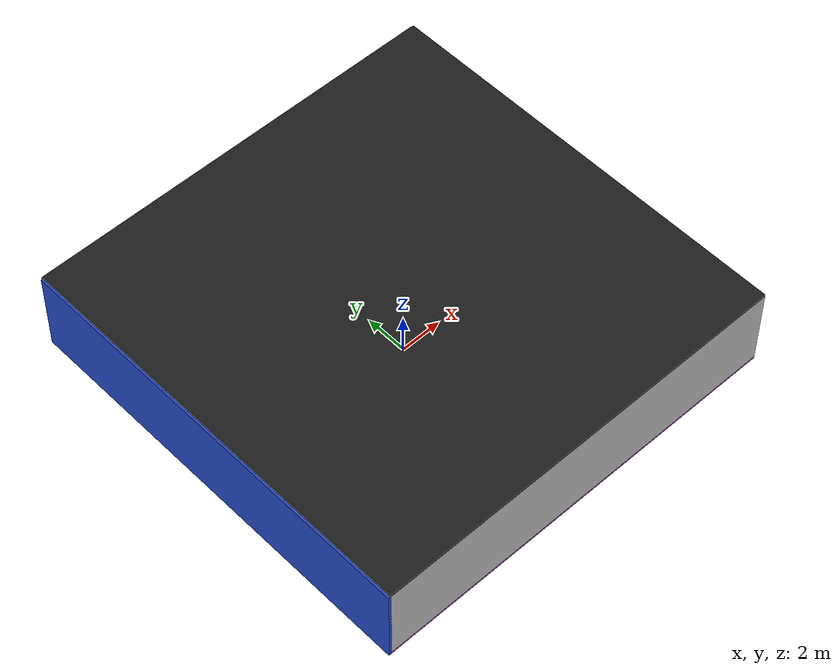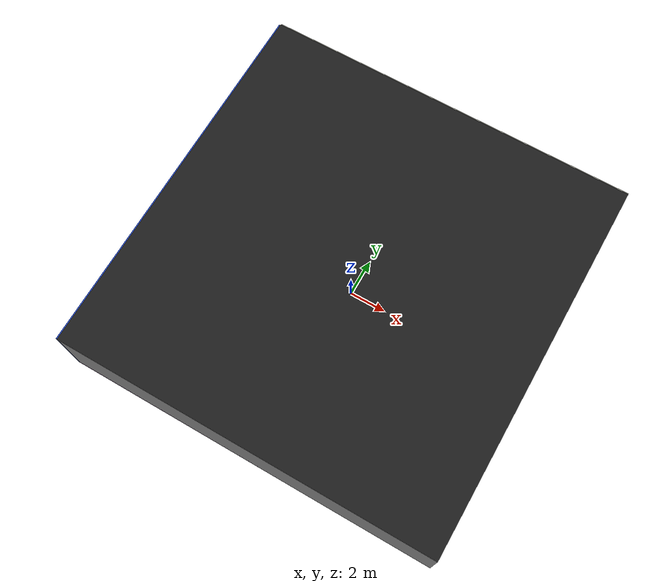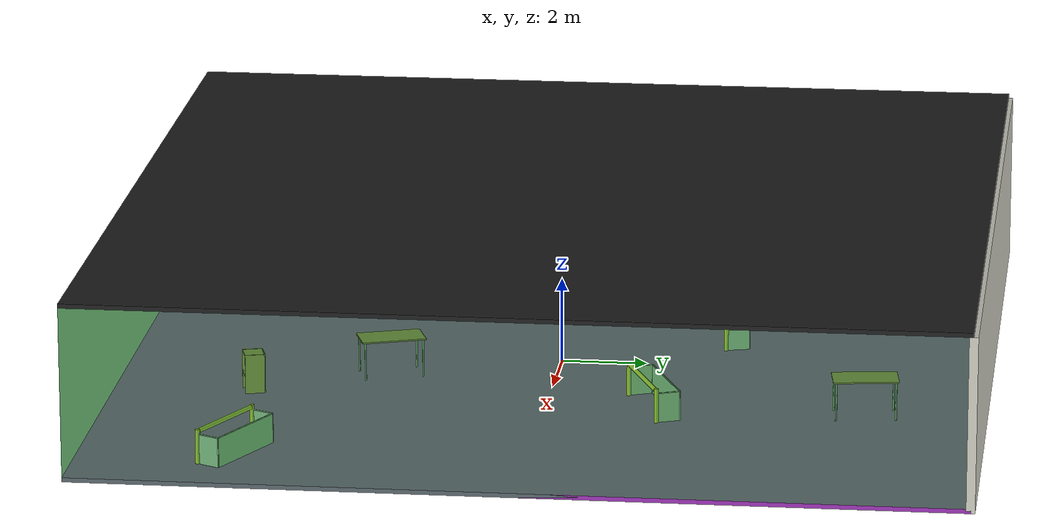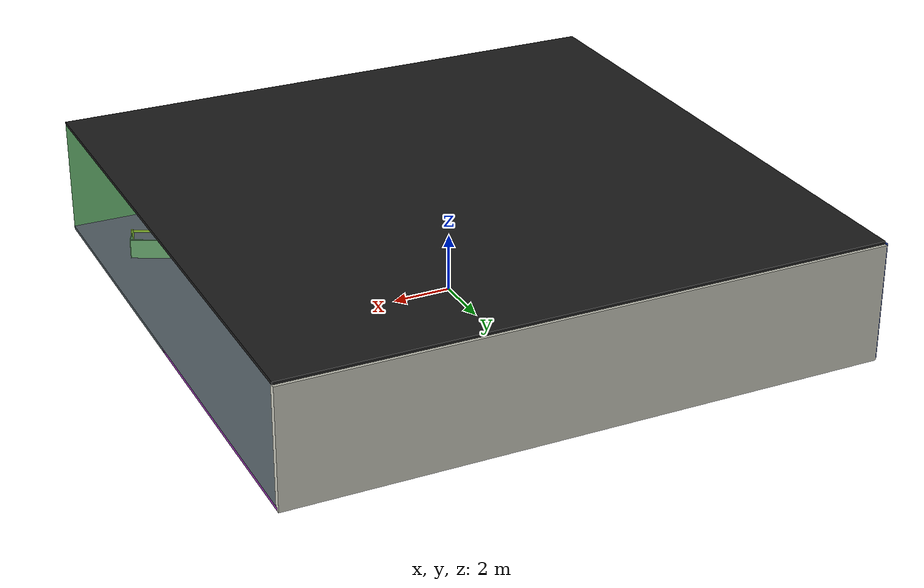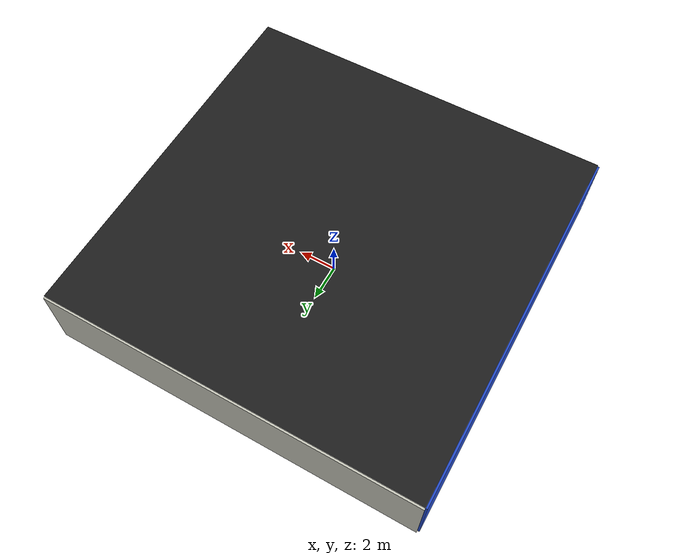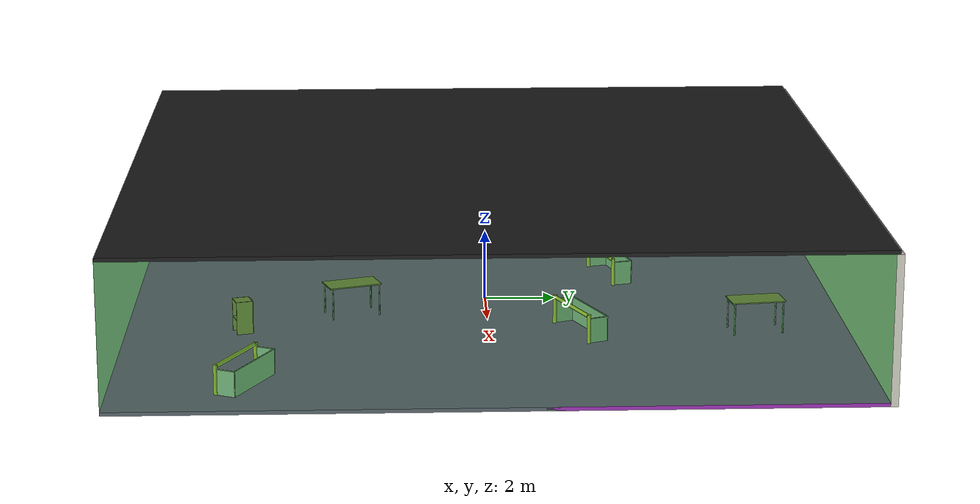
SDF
<sdf version="1.4">
 <world name="default">
  <physics type="ode">
   <max_step_size>0.001</max_step_size>
   <real_time_factor>1</real_time_factor>
   <real_time_update_rate>1000</real_time_update_rate>
   <gravity>0 0 -9.8</gravity>
  </physics>
  <scene><ambient>0.4 0.4 0.4 1</ambient><background>0.7 0.7 0.7 1</background><shadows>1</shadows></scene>
  <model name="Surrounding">
   <static>1</static>
   <link name="Ceiling">
    <collision name="Ceiling_Collision"><geometry><box><size>20 20 0.1</size></box></geometry></collision>
    <visual name="Ceiling_Visual">
     <geometry><box><size>20 20 0.1</size></box></geometry>
     <material>
      <script><uri>file://media/materials/scripts/gazebo.material</uri><name>Gazebo/Black</name></script>
     </material>
    </visual>
    <pose>0 0 4.05 0 0 0</pose>
   </link>
   <link name="Wall_South">
    <collision name="Wall_South_Collision">
     <geometry><box><size>20 0 4</size></box></geometry>
     <pose>0 0 2 0 -0 0</pose>
    </collision>
    <visual name="Wall_South_Visual">
     <pose>0 0 2 0 -0 0</pose>
     <geometry><box><size>20 0 4</size></box></geometry>
     <material>
      <script><uri>file://media/materials/scripts/gazebo.material</uri><name>Gazebo/PioneerBody</name></script>
     </material>
    </visual>
    <velocity_decay><linear>0</linear><angular>0</angular></velocity_decay>
    <pose>0 -10 0 0 -0 0</pose>
   </link>
   <link name="Wall_East">
    <collision name="Wall_21_Collision">
     <geometry><box><size>20 0 4</size></box></geometry>
     <pose>0 0 2 0 -0 0</pose>
    </collision>
    <visual name="Wall_21_Visual">
     <pose>0 0 2 0 -0 0</pose>
     <geometry><box><size>20 0 4</size></box></geometry>
     <material>
      <script><uri>file://media/materials/scripts/gazebo.material</uri><name>Gazebo/GreenTransparent</name></script>
     </material>
    </visual>
    <velocity_decay><linear>0</linear><angular>0</angular></velocity_decay>
    <pose>10 0 0 0 -0 1.5708</pose>
   </link>
   <link name="Wall_North">
    <collision name="Wall_22_Collision">
     <geometry><box><size>20 0.2 4</size></box></geometry>
     <pose>0 0 2 0 -0 0</pose>
    </collision>
    <visual name="Wall_22_Visual">
     <pose>0 0 2 0 -0 0</pose>
     <geometry><box><size>20 0.2 4</size></box></geometry>
     <material>
      <script><uri>file://media/materials/scripts/gazebo.material</uri><name>Gazebo/PaintedWall</name></script>
     </material>
    </visual>
    <velocity_decay><linear>0</linear><angular>0</angular></velocity_decay>
    <pose>0 10 0 0 -0 0</pose>
   </link>
   <link name="Wall_West">
    <collision name="Wall_23_Collision">
     <geometry><box><size>20 0.2 4</size></box></geometry>
     <pose>0 0 2 0 -0 0</pose>
    </collision>
    <visual name="Wall_23_Visual">
     <pose>0 0 2 0 -0 0</pose>
     <geometry><box><size>20 0.2 4</size></box></geometry>
     <material>
      <script><uri>file://media/materials/scripts/gazebo.material</uri><name>Gazebo/Blue</name></script>
     </material>
    </visual>
    <velocity_decay><linear>0</linear><angular>0</angular></velocity_decay>
    <pose>-10 0 0 0 0 -1.5708</pose>
   </link>
   <link name="Ground_link">
    <collision name="collision">
     <pose>0 0 .05 0 -0 0</pose>
     <geometry><box><size>20 20 0.1</size></box></geometry>
    </collision>
    <visual name="visual">
     <pose>0 0 .05 0 -0 0</pose>
     <geometry><box><size>20 20 0.1</size></box></geometry>
     <material>
      <script><uri>file://media/materials/scripts/gazebo.material</uri><name>Gazebo/PurpleGlow</name></script>
     </material>
    </visual>
   </link>
   <static>1</static>
  </model>
  <spherical_coordinates>
   <surface_model>EARTH_WGS84</surface_model>
   <latitude_deg>0</latitude_deg>
   <longitude_deg>0</longitude_deg>
   <elevation>0</elevation>
   <heading_deg>0</heading_deg>
  </spherical_coordinates>
  <light name="lightball_0" type="diffuse">
   <diffuse>0.8 0.8 0.8 1</diffuse>
   <specular>0.2 0.2 0.2 1</specular>
   <attenuation>
    <range>100</range>
    <constant>0.7</constant>
    <linear>0.01</linear>
    <quadratic>0.001</quadratic>
   </attenuation>
   <direction>-0.5 0.1 -0.9</direction>
   <pose>-8.99398506246 -3.09259918002 2.85898883435 0 0 0</pose>
  </light>
  <light name="lightball_1" type="diffuse">
   <diffuse>0.8 0.8 0.8 1</diffuse>
   <specular>0.2 0.2 0.2 1</specular>
   <attenuation>
    <range>100</range>
    <constant>0.7</constant>
    <linear>0.01</linear>
    <quadratic>0.001</quadratic>
   </attenuation>
   <direction>-0.5 0.1 -0.9</direction>
   <pose>-5.60557069526 9.54892110016 2.34476608246 0 0 0</pose>
  </light>
  <light name="lightball_2" type="diffuse">
   <diffuse>0.8 0.8 0.8 1</diffuse>
   <specular>0.2 0.2 0.2 1</specular>
   <attenuation>
    <range>100</range>
    <constant>0.7</constant>
    <linear>0.01</linear>
    <quadratic>0.001</quadratic>
   </attenuation>
   <direction>-0.5 0.1 -0.9</direction>
   <pose>6.25968600435 9.18888867424 1.93515660405 0 0 0</pose>
  </light>
  <light name="lightball_3" type="diffuse">
   <diffuse>0.8 0.8 0.8 1</diffuse>
   <specular>0.2 0.2 0.2 1</specular>
   <attenuation>
    <range>100</range>
    <constant>0.7</constant>
    <linear>0.01</linear>
    <quadratic>0.001</quadratic>
   </attenuation>
   <direction>-0.5 0.1 -0.9</direction>
   <pose>-7.49972677843 9.22294614786 2.90884791251 0 0 0</pose>
  </light>
  <light name="lightball_4" type="diffuse">
   <diffuse>0.8 0.8 0.8 1</diffuse>
   <specular>0.2 0.2 0.2 1</specular>
   <attenuation>
    <range>100</range>
    <constant>0.7</constant>
    <linear>0.01</linear>
    <quadratic>0.001</quadratic>
   </attenuation>
   <direction>-0.5 0.1 -0.9</direction>
   <pose>2.27468138002 5.57244788884 1.26038366773 0 0 0</pose>
  </light>
  <light name="lightball_5" type="diffuse">
   <diffuse>0.8 0.8 0.8 1</diffuse>
   <specular>0.2 0.2 0.2 1</specular>
   <attenuation>
    <range>100</range>
    <constant>0.7</constant>
    <linear>0.01</linear>
    <quadratic>0.001</quadratic>
   </attenuation>
   <direction>-0.5 0.1 -0.9</direction>
   <pose>-6.38313489713 -4.89073179792 0.508023709283 0 0 0</pose>
  </light>
  <light name="lightball_6" type="diffuse">
   <diffuse>0.8 0.8 0.8 1</diffuse>
   <specular>0.2 0.2 0.2 1</specular>
   <attenuation>
    <range>100</range>
    <constant>0.7</constant>
    <linear>0.01</linear>
    <quadratic>0.001</quadratic>
   </attenuation>
   <direction>-0.5 0.1 -0.9</direction>
   <pose>-6.39889304376 3.04861010245 0.891781794576 0 0 0</pose>
  </light>
  <light name="lightball_7" type="diffuse">
   <diffuse>0.8 0.8 0.8 1</diffuse>
   <specular>0.2 0.2 0.2 1</specular>
   <attenuation>
    <range>100</range>
    <constant>0.7</constant>
    <linear>0.01</linear>
    <quadratic>0.001</quadratic>
   </attenuation>
   <direction>-0.5 0.1 -0.9</direction>
   <pose>-1.73493318639 3.7855501197 0.799400847565 0 0 0</pose>
  </light>
  <light name="lightball_8" type="diffuse">
   <diffuse>0.8 0.8 0.8 1</diffuse>
   <specular>0.2 0.2 0.2 1</specular>
   <attenuation>
    <range>100</range>
    <constant>0.7</constant>
    <linear>0.01</linear>
    <quadratic>0.001</quadratic>
   </attenuation>
   <direction>-0.5 0.1 -0.9</direction>
   <pose>-9.99940291899 4.49489611537 0.936957492528 0 0 0</pose>
  </light>
  <include>
   <uri>model://textured_shapes</uri>
   <pose>-7.17476071998 -0.939607173541 0 0 0 2.72648401405</pose>
  </include>
  <include>
   <uri>model://robocup_3Dsim_goal</uri>
   <pose>-1.92555491758 3.50178193107 0 0 0 1.84395271986</pose>
  </include>
  <include><uri>model://table</uri><pose>1.71561979523 -3.79998513701 0 0 0 1.90210594954</pose></include>
  <include><uri>model://cabinet</uri><pose>3.3078566417 -6.78178743817 0 0 0 1.86646469238</pose></include>
  <include>
   <uri>model://robocup_3Dsim_goal</uri>
   <pose>3.7257158811 2.25106066895 0 0 0 1.96591164762</pose>
  </include>
  <include><uri>model://table</uri><pose>3.67687721426 7.32138821431 0 0 0 1.70143564317</pose></include>
  <include>
   <uri>model://robocup_3Dsim_goal</uri>
   <pose>7.76167491903 -6.71844039914 0 0 0 1.11299329215</pose>
  </include>
 </world>
</sdf>

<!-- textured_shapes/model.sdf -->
<sdf version="1.6">
  <model name="textured_shapes">
    <pose>0 0 0.5 0 0 0</pose>
    <link name="box">
      <pose>0 -1.5 0 0 0 0</pose>
      <collision name="collision">
        <geometry>
          <box>
            <size>1 1 1</size>
          </box>
        </geometry>
      </collision>
      <visual name="visual">
        <geometry>
          <box>
            <size>1 1 1</size>
          </box>
        </geometry>
        <material>
          <script>
            <uri>model://../model_source/models/textured_shapes/materials/scripts</uri>
            <uri>model://../model_source/models/textured_shapes/materials/textures</uri>
            <name>TexturedShape/Squares</name>
          </script>
        </material>
      </visual>
    </link>
    <link name="sphere">
      <collision name="collision">
        <geometry>
          <sphere>
            <radius>0.5</radius>
          </sphere>
        </geometry>
      </collision>
      <visual name="visual">
        <geometry>
          <sphere>
            <radius>0.5</radius>
          </sphere>
        </geometry>
        <material>
          <script>
            <uri>model://../model_source/models/textured_shapes/materials/scripts</uri>
            <uri>model://../model_source/models/textured_shapes/materials/textures</uri>
            <name>TexturedShape/Squares</name>
          </script>
        </material>
      </visual>
    </link>
    <link name="cylinder">
      <pose>0 1.5 0 0 0 0</pose>
      <collision name="collision">
        <geometry>
          <cylinder>
            <radius>0.5</radius>
            <length>1</length>
          </cylinder>
        </geometry>
      </collision>
      <visual name="visual">
        <geometry>
          <cylinder>
            <radius>0.5</radius>
            <length>1</length>
          </cylinder>
        </geometry>
        <material>
          <script>
            <uri>model://../model_source/models/textured_shapes/materials/scripts</uri>
            <uri>model://../model_source/models/textured_shapes/materials/textures</uri>
            <name>TexturedShape/Squares</name>
          </script>
        </material>
      </visual>
    </link>
  </model>
</sdf>

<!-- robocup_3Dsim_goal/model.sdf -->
<sdf version="1.5">
  <model name="robocup_3d_goal">
    <static>true</static>
    <link name="left_post">
      <pose>0 1.05 0.45 0 0 0</pose>
      <collision name="collision">
        <geometry>
          <cylinder>
            <radius>0.05</radius>
            <length>0.9</length>
          </cylinder>
        </geometry>
      </collision>
      <visual name="visual">
        <geometry>
          <cylinder>
            <radius>0.05</radius>
            <length>0.9</length>
          </cylinder>
        </geometry>
        <material>
          <script>
            <uri>file://media/materials/scripts/gazebo.material</uri>
            <name>Gazebo/ZincYellow</name>
          </script>
        </material>
      </visual>
    </link>
    <link name="left_support_horiz_lower">
      <pose>0.30 1.05 0.01 0 0 0</pose>
      <collision name="collision">
        <geometry>
          <box>
            <size>0.50 0.02 0.02</size>
          </box>
        </geometry>
      </collision>
      <visual name="visual">
        <geometry>
          <box>
            <size>0.50 0.02 0.02</size>
          </box>
        </geometry>
        <material>
          <script>
            <uri>file://media/materials/scripts/gazebo.material</uri>
            <name>Gazebo/White</name>
          </script>
        </material>
      </visual>
    </link>
    <link name="left_support_horiz_upper">
      <pose>0.30 1.05 0.79 0 0 0</pose>
      <collision name="collision">
        <geometry>
          <box>
            <size>0.50 0.02 0.02</size>
          </box>
        </geometry>
      </collision>
      <visual name="visual">
        <geometry>
          <box>
            <size>0.50 0.02 0.02</size>
          </box>
        </geometry>
        <material>
          <script>
            <uri>file://media/materials/scripts/gazebo.material</uri>
            <name>Gazebo/White</name>
          </script>
        </material>
      </visual>
    </link>
    <link name="left_support_vertical">
      <pose>0.56 1.05 0.4 0 1.5708 0</pose>
      <collision name="collision">
        <geometry>
          <box>
            <size>0.80 0.02 0.02</size>
          </box>
        </geometry>
      </collision>
      <visual name="visual">
        <geometry>
          <box>
            <size>0.80 0.02 0.02</size>
          </box>
        </geometry>
        <material>
          <script>
            <uri>file://media/materials/scripts/gazebo.material</uri>
            <name>Gazebo/White</name>
          </script>
        </material>
      </visual>
    </link>
    <link name="right_support_horiz_lower">
      <pose>0.30 -1.05 0.01 0 0 0</pose>
      <collision name="collision">
        <geometry>
          <box>
            <size>0.50 0.02 0.02</size>
          </box>
        </geometry>
      </collision>
      <visual name="visual">
        <geometry>
          <box>
            <size>0.50 0.02 0.02</size>
          </box>
        </geometry>
        <material>
          <script>
            <uri>file://media/materials/scripts/gazebo.material</uri>
            <name>Gazebo/White</name>
          </script>
        </material>
      </visual>
    </link>
    <link name="right_support_horiz_upper">
      <pose>0.30 -1.05 0.79 0 0 0</pose>
      <collision name="collision">
        <geometry>
          <box>
            <size>0.50 0.02 0.02</size>
          </box>
        </geometry>
      </collision>
      <visual name="visual">
        <geometry>
          <box>
            <size>0.50 0.02 0.02</size>
          </box>
        </geometry>
        <material>
          <script>
            <uri>file://media/materials/scripts/gazebo.material</uri>
            <name>Gazebo/White</name>
          </script>
        </material>
      </visual>
    </link>
    <link name="right_support_vertical">
      <pose>0.56 -1.05 0.4 0 1.5708 0</pose>
      <collision name="collision">
        <geometry>
          <box>
            <size>0.80 0.02 0.02</size>
          </box>
        </geometry>
      </collision>
      <visual name="visual">
        <geometry>
          <box>
            <size>0.80 0.02 0.02</size>
          </box>
        </geometry>
        <material>
          <script>
            <uri>file://media/materials/scripts/gazebo.material</uri>
            <name>Gazebo/White</name>
          </script>
        </material>
      </visual>
    </link>
    <link name="center_support_horiz_lower">
      <pose>0.56 0 0.01 0 1.5708 0</pose>
      <collision name="collision">
        <geometry>
          <box>
            <size>0.02 2.08 0.02</size>
          </box>
        </geometry>
      </collision>
      <visual name="visual">
        <geometry>
          <box>
            <size>0.02 2.08 0.02</size>
          </box>
        </geometry>
        <material>
          <script>
            <uri>file://media/materials/scripts/gazebo.material</uri>
            <name>Gazebo/White</name>
          </script>
        </material>
      </visual>
    </link>
    <link name="center_support_horiz_upper">
      <pose>0.56 0 0.79 0 1.5708 0</pose>
      <collision name="collision">
        <geometry>
          <box>
            <size>0.02 2.08 0.02</size>
          </box>
        </geometry>
      </collision>
      <visual name="visual">
        <geometry>
          <box>
            <size>0.02 2.08 0.02</size>
          </box>
        </geometry>
        <material>
          <script>
            <uri>file://media/materials/scripts/gazebo.material</uri>
            <name>Gazebo/White</name>
          </script>
        </material>
      </visual>
    </link>
    <link name="right_post">
      <pose>0 -1.05 0.45 0 0 0</pose>
      <collision name="collision">
        <geometry>
          <cylinder>
            <radius>0.05</radius>
            <length>0.9</length>
          </cylinder>
        </geometry>
      </collision>
      <visual name="visual">
        <geometry>
          <cylinder>
            <radius>0.05</radius>
            <length>0.9</length>
          </cylinder>
        </geometry>
        <material>
          <script>
            <uri>file://media/materials/scripts/gazebo.material</uri>
            <name>Gazebo/ZincYellow</name>
          </script>
        </material>
      </visual>
    </link>
    <link name="crossbar">
      <pose>0 0 0.85 1.57 1.57 0</pose>
      <collision name="collision">
        <geometry>
          <cylinder>
            <radius>0.05</radius>
            <length>2.0</length>
          </cylinder>
        </geometry>
      </collision>
      <visual name="visual">
        <geometry>
          <cylinder>
            <radius>0.05</radius>
            <length>2.0</length>
          </cylinder>
        </geometry>
        <material>
          <script>
            <uri>file://media/materials/scripts/gazebo.material</uri>
            <name>Gazebo/ZincYellow</name>
          </script>
        </material>
      </visual>
    </link>
    <link name="center_net">
      <pose>0.56 0 0.40 0 0 0</pose>
      <collision name="collision">
        <geometry>
          <box>
            <size>0.01 2.1 0.80</size>
          </box>
        </geometry>
      </collision>
      <visual name="visual">
        <geometry>
          <box>
            <size>0.01 2.1 0.80</size>
          </box>
        </geometry>
        <material>
          <script>
            <uri>model://../model_source/models/robocup09_spl_field/materials/scripts/</uri>
            <uri>model://../model_source/models/robocup09_spl_field/materials/textures/</uri>
            <name>RoboCup/Net</name>
          </script>
        </material>
      </visual>
    </link>
    <link name="left_net">
      <pose>0.30 1.05 0.40 0 0 0</pose>
      <collision name="collision">
        <geometry>
          <box>
            <size>0.50 0.01 0.76</size>
          </box>
        </geometry>
      </collision>
      <visual name="visual">
        <geometry>
          <box>
            <size>0.50 0.01 0.76</size>
          </box>
        </geometry>
        <material>
          <script>
            <uri>model://../model_source/models/robocup09_spl_field/materials/scripts/</uri>
            <uri>model://../model_source/models/robocup09_spl_field/materials/textures/</uri>
            <name>RoboCup/Net</name>
          </script>
        </material>
      </visual>
    </link>
    <link name="right_net">
      <pose>0.30 -1.05 0.40 0 0 0</pose>
      <collision name="collision">
        <geometry>
          <box>
            <size>0.50 0.01 0.76</size>
          </box>
        </geometry>
      </collision>
      <visual name="visual">
        <geometry>
          <box>
            <size>0.50 0.01 0.76</size>
          </box>
        </geometry>
        <material>
          <script>
            <uri>model://../model_source/models/robocup09_spl_field/materials/scripts/</uri>
            <uri>model://../model_source/models/robocup09_spl_field/materials/textures/</uri>
            <name>RoboCup/Net</name>
          </script>
        </material>
      </visual>
    </link>
  </model>
</sdf>

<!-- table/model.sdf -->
<sdf version="1.5">
  <model name="table">
    <static>true</static>
    <link name="link">
      <collision name="surface">
        <pose>0 0 1.0 0 0 0</pose>
        <geometry>
          <box>
            <size>1.5 0.8 0.03</size>
          </box>
        </geometry>
        <surface>
          <friction>
            <ode>
              <mu>0.6</mu>
              <mu2>0.6</mu2>
            </ode>
          </friction>
        </surface>
      </collision>
      <visual name="visual1">
        <pose>0 0 1.0 0 0 0</pose>
        <geometry>
          <box>
            <size>1.5 0.8 0.03</size>
          </box>
        </geometry>
        <material>
          <script>
            <uri>model://media/materials/scripts/gazebo.material</uri>
            <name>Gazebo/Wood</name>
          </script>
        </material>
      </visual>
      <collision name="front_left_leg">
        <pose>0.68 0.38 0.5 0 0 0</pose>
        <geometry>
          <cylinder>
            <radius>0.02</radius>
            <length>1.0</length>
          </cylinder>
        </geometry>
      </collision>
      <visual name="front_left_leg">
        <pose>0.68 0.38 0.5 0 0 0</pose>
        <geometry>
          <cylinder>
            <radius>0.02</radius>
            <length>1.0</length>
          </cylinder>
        </geometry>
        <material>
          <script>
            <uri>model://media/materials/scripts/gazebo.material</uri>
            <name>Gazebo/Grey</name>
          </script>
        </material>
      </visual>
      <collision name="front_right_leg">
        <pose>0.68 -0.38 0.5 0 0 0</pose>
        <geometry>
          <cylinder>
            <radius>0.02</radius>
            <length>1.0</length>
          </cylinder>
        </geometry>
      </collision>
      <visual name="front_right_leg">
        <pose>0.68 -0.38 0.5 0 0 0</pose>
        <geometry>
          <cylinder>
            <radius>0.02</radius>
            <length>1.0</length>
          </cylinder>
        </geometry>
        <material>
          <script>
            <uri>model://media/materials/scripts/gazebo.material</uri>
            <name>Gazebo/Grey</name>
          </script>
        </material>
      </visual>
      <collision name="back_right_leg">
        <pose>-0.68 -0.38 0.5 0 0 0</pose>
        <geometry>
          <cylinder>
            <radius>0.02</radius>
            <length>1.0</length>
          </cylinder>
        </geometry>
      </collision>
      <visual name="back_right_leg">
        <pose>-0.68 -0.38 0.5 0 0 0</pose>
        <geometry>
          <cylinder>
            <radius>0.02</radius>
            <length>1.0</length>
          </cylinder>
        </geometry>
        <material>
          <script>
            <uri>model://media/materials/scripts/gazebo.material</uri>
            <name>Gazebo/Grey</name>
          </script>
        </material>
      </visual>
      <collision name="back_left_leg">
        <pose>-0.68 0.38 0.5 0 0 0</pose>
        <geometry>
          <cylinder>
            <radius>0.02</radius>
            <length>1.0</length>
          </cylinder>
        </geometry>
      </collision>
      <visual name="back_left_leg">
        <pose>-0.68 0.38 0.5 0 0 0</pose>
        <geometry>
          <cylinder>
            <radius>0.02</radius>
            <length>1.0</length>
          </cylinder>
        </geometry>
        <material>
          <script>
            <uri>model://media/materials/scripts/gazebo.material</uri>
            <name>Gazebo/Grey</name>
          </script>
        </material>
      </visual>
    </link>
  </model>
</sdf>

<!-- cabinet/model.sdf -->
<sdf version="1.5">
  <model name="cabinet">
    <static>true</static>
    <link name="cabinet_bottom_plate">
      <inertial>
        <pose>0 0 -1 0 0 0</pose>
        <inertia>
          <ixx>2.050000</ixx>
          <ixy>0</ixy>
          <ixz>0</ixz>
          <iyy>2.050000</iyy>
          <iyz>0</iyz>
          <izz>2.050000</izz>
        </inertia>
        <mass>25.000000</mass>
      </inertial>
      <collision name="cabinet_bottom_plate_geom">
        <pose>0 0 0.010000 0 0 0</pose>
        <geometry>
          <box>
            <size>0.450000 0.450000 0.020000</size>
          </box>
        </geometry>
      </collision>
      <visual name="cabinet_bottom_plate_geom_visual">
        <pose>0 0 0.010000 0 0 0</pose>
        <geometry>
          <box>
            <size>0.450000 0.450000 0.020000</size>
          </box>
        </geometry>
        <material>
          <script>
            <uri>model://media/materials/scripts/gazebo.material</uri>
            <name>Gazebo/Wood</name>
          </script>
        </material>
      </visual>
      <collision name="cabinet_bottom_plate_geom_cabinet_back_plate">
        <pose>0.235000 0 0.510000 0 0 0</pose>
        <geometry>
          <box>
            <size>0.020000 0.450000 1.020000</size>
          </box>
        </geometry>
      </collision>
      <visual name="cabinet_bottom_plate_geom_cabinet_back_plate_visual">
        <pose>0.235000 0 0.510000 0 0 0</pose>
        <geometry>
          <box>
            <size>0.020000 0.450000 1.020000</size>
          </box>
        </geometry>
        <material>
          <script>
            <uri>model://media/materials/scripts/gazebo.material</uri>
            <name>Gazebo/Wood</name>
          </script>
        </material>
      </visual>
      <collision name="cabinet_bottom_plate_geom_cabinet_left_plate">
        <pose>0 0.235000 0.510000 0 0 0</pose>
        <geometry>
          <box>
            <size>0.450000 0.020000 1.020000</size>
          </box>
        </geometry>
      </collision>
      <visual name="cabinet_bottom_plate_geom_cabinet_left_plate_visual">
        <pose>0 0.235000 0.510000 0 0 0</pose>
        <geometry>
          <box>
            <size>0.450000 0.020000 1.020000</size>
          </box>
        </geometry>
        <material>
          <script>
            <uri>model://media/materials/scripts/gazebo.material</uri>
            <name>Gazebo/Wood</name>
          </script>
        </material>
      </visual>
      <collision name="cabinet_bottom_plate_geom_cabinet_middle_plate">
        <pose>0 0 0.510000 0 0 0</pose>
        <geometry>
          <box>
            <size>0.450000 0.450000 0.020000</size>
          </box>
        </geometry>
      </collision>
      <visual name="cabinet_bottom_plate_geom_cabinet_middle_plate_visual">
        <pose>0 0 0.510000 0 0 0</pose>
        <geometry>
          <box>
            <size>0.450000 0.450000 0.020000</size>
          </box>
        </geometry>
        <material>
          <script>
            <uri>model://media/materials/scripts/gazebo.material</uri>
            <name>Gazebo/Wood</name>
          </script>
        </material>
      </visual>
      <collision name="cabinet_bottom_plate_geom_cabinet_right_plate">
        <pose>0 -0.235000 0.510000 0 0 0</pose>
        <geometry>
          <box>
            <size>0.450000 0.020000 1.020000</size>
          </box>
        </geometry>
      </collision>
      <visual name="cabinet_bottom_plate_geom_cabinet_right_plate_visual">
        <pose>0 -0.235000 0.510000 0 0 0</pose>
        <geometry>
          <box>
            <size>0.450000 0.020000 1.020000</size>
          </box>
        </geometry>
        <material>
          <script>
            <uri>model://media/materials/scripts/gazebo.material</uri>
            <name>Gazebo/Wood</name>
          </script>
        </material>
      </visual>
      <collision name="cabinet_bottom_plate_geom_cabinet_top_plate">
        <pose>0 0 1.010000 0 0 0</pose>
        <geometry>
          <box>
            <size>0.450000 0.450000 0.020000</size>
          </box>
        </geometry>
      </collision>
      <visual name="cabinet_bottom_plate_geom_cabinet_top_plate_visual">
        <pose>0 0 1.010000 0 0 0</pose>
        <geometry>
          <box>
            <size>0.450000 0.450000 0.020000</size>
          </box>
        </geometry>
        <material>
          <script>
            <uri>model://media/materials/scripts/gazebo.material</uri>
            <name>Gazebo/Wood</name>
          </script>
        </material>
      </visual>
    </link>
  </model>
</sdf>
